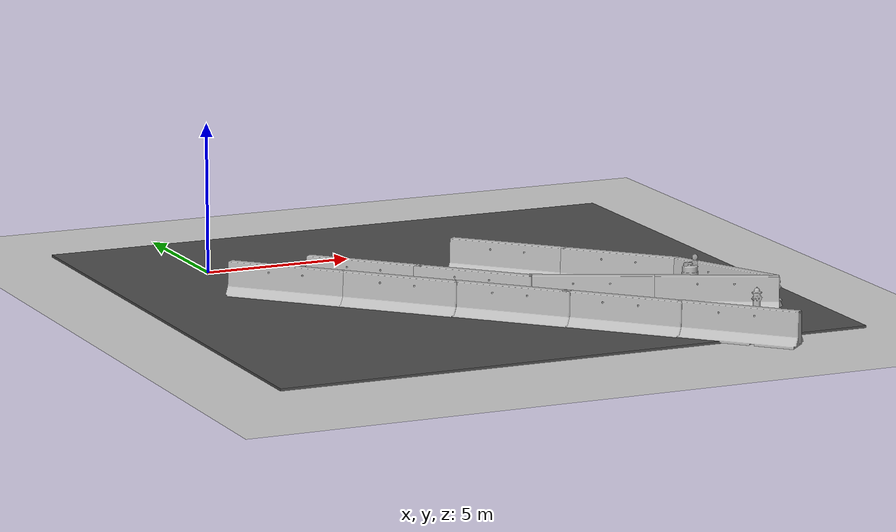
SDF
<sdf version="1.7">
 <world name="default">
  <model name="ground_plane">
   <static>1</static>
   <link name="link">
    <collision name="collision">
     <geometry><plane><normal>0 0 1</normal><size>100 100</size></plane></geometry>
     <surface><friction><ode><mu>100</mu><mu2>50</mu2></ode></friction></surface>
    </collision>
    <visual name="visual">
     <cast_shadows>0</cast_shadows>
     <geometry><plane><normal>0 0 1</normal><size>100 100</size></plane></geometry>
     <material>
      <script><uri>file://media/materials/scripts/gazebo.material</uri><name>Gazebo/Grey</name></script>
     </material>
    </visual>
   </link>
  </model>
  <model name="asphalt_plane">
   <static>1</static>
   <link name="link">
    <collision name="collision"><geometry><box><size>20 20 0.1</size></box></geometry></collision>
    <visual name="visual">
     <cast_shadows>0</cast_shadows>
     <geometry><box><size>20 20 0.1</size></box></geometry>
     <material>
      <script>
       <uri>model://asphalt_plane/materials/scripts</uri>
       <uri>model://asphalt_plane/materials/textures</uri>
       <name>vrc/asphalt</name>
      </script>
     </material>
    </visual>
   </link>
   <pose>6.15691 -5.58984 0 0 -0 0</pose>
  </model>
  <model name="jersey_barrier_clone_0">
   <static>1</static>
   <link name="link">
    <visual name="visual">
     <geometry><mesh><uri>model://jersey_barrier/meshes/jersey_barrier.dae</uri></mesh></geometry>
    </visual>
    <collision name="upright">
     <pose>0 0 0.5715 0 -0 0</pose>
     <geometry><box><size>4.06542 0.3063 1.143</size></box></geometry>
    </collision>
    <collision name="base">
     <pose>0 0 0.032258 0 -0 0</pose>
     <geometry><box><size>4.06542 0.8107 0.064516</size></box></geometry>
    </collision>
    <collision name="base2">
     <pose>0 0 0.1 0 -0 0</pose>
     <geometry><box><size>4.06542 0.65 0.1</size></box></geometry>
    </collision>
    <collision name="base3">
     <pose>0 0 0.2 0 -0 0</pose>
     <geometry><box><size>4.06542 0.5 0.1</size></box></geometry>
    </collision>
    <collision name="left-angle">
     <pose>0 -0.224 0.2401 0.9 -0 0</pose>
     <geometry><box><size>4.06542 0.5 0.064516</size></box></geometry>
    </collision>
    <collision name="right-angle">
     <pose>0 0.224 0.2401 -0.9 0 0</pose>
     <geometry><box><size>4.06542 0.5 0.064516</size></box></geometry>
    </collision>
   </link>
   <pose>0.873662 -4.75446 0 0 0 -0.801658</pose>
  </model>
  <model name="jersey_barrier_clone_1">
   <static>1</static>
   <link name="link">
    <visual name="visual">
     <geometry><mesh><uri>model://jersey_barrier/meshes/jersey_barrier.dae</uri></mesh></geometry>
    </visual>
    <collision name="upright">
     <pose>0 0 0.5715 0 -0 0</pose>
     <geometry><box><size>4.06542 0.3063 1.143</size></box></geometry>
    </collision>
    <collision name="base">
     <pose>0 0 0.032258 0 -0 0</pose>
     <geometry><box><size>4.06542 0.8107 0.064516</size></box></geometry>
    </collision>
    <collision name="base2">
     <pose>0 0 0.1 0 -0 0</pose>
     <geometry><box><size>4.06542 0.65 0.1</size></box></geometry>
    </collision>
    <collision name="base3">
     <pose>0 0 0.2 0 -0 0</pose>
     <geometry><box><size>4.06542 0.5 0.1</size></box></geometry>
    </collision>
    <collision name="left-angle">
     <pose>0 -0.224 0.2401 0.9 -0 0</pose>
     <geometry><box><size>4.06542 0.5 0.064516</size></box></geometry>
    </collision>
    <collision name="right-angle">
     <pose>0 0.224 0.2401 -0.9 0 0</pose>
     <geometry><box><size>4.06542 0.5 0.064516</size></box></geometry>
    </collision>
   </link>
   <pose>3.5774 -7.53993 0 0 0 -0.801658</pose>
  </model>
  <model name="jersey_barrier_clone_2">
   <static>1</static>
   <link name="link">
    <visual name="visual">
     <geometry><mesh><uri>model://jersey_barrier/meshes/jersey_barrier.dae</uri></mesh></geometry>
    </visual>
    <collision name="upright">
     <pose>0 0 0.5715 0 -0 0</pose>
     <geometry><box><size>4.06542 0.3063 1.143</size></box></geometry>
    </collision>
    <collision name="base">
     <pose>0 0 0.032258 0 -0 0</pose>
     <geometry><box><size>4.06542 0.8107 0.064516</size></box></geometry>
    </collision>
    <collision name="base2">
     <pose>0 0 0.1 0 -0 0</pose>
     <geometry><box><size>4.06542 0.65 0.1</size></box></geometry>
    </collision>
    <collision name="base3">
     <pose>0 0 0.2 0 -0 0</pose>
     <geometry><box><size>4.06542 0.5 0.1</size></box></geometry>
    </collision>
    <collision name="left-angle">
     <pose>0 -0.224 0.2401 0.9 -0 0</pose>
     <geometry><box><size>4.06542 0.5 0.064516</size></box></geometry>
    </collision>
    <collision name="right-angle">
     <pose>0 0.224 0.2401 -0.9 0 0</pose>
     <geometry><box><size>4.06542 0.5 0.064516</size></box></geometry>
    </collision>
   </link>
   <pose>6.27443 -10.2689 0 0 0 -0.801658</pose>
  </model>
  <model name="jersey_barrier_clone_3">
   <static>1</static>
   <link name="link">
    <visual name="visual">
     <geometry><mesh><uri>model://jersey_barrier/meshes/jersey_barrier.dae</uri></mesh></geometry>
    </visual>
    <collision name="upright">
     <pose>0 0 0.5715 0 -0 0</pose>
     <geometry><box><size>4.06542 0.3063 1.143</size></box></geometry>
    </collision>
    <collision name="base">
     <pose>0 0 0.032258 0 -0 0</pose>
     <geometry><box><size>4.06542 0.8107 0.064516</size></box></geometry>
    </collision>
    <collision name="base2">
     <pose>0 0 0.1 0 -0 0</pose>
     <geometry><box><size>4.06542 0.65 0.1</size></box></geometry>
    </collision>
    <collision name="base3">
     <pose>0 0 0.2 0 -0 0</pose>
     <geometry><box><size>4.06542 0.5 0.1</size></box></geometry>
    </collision>
    <collision name="left-angle">
     <pose>0 -0.224 0.2401 0.9 -0 0</pose>
     <geometry><box><size>4.06542 0.5 0.064516</size></box></geometry>
    </collision>
    <collision name="right-angle">
     <pose>0 0.224 0.2401 -0.9 0 0</pose>
     <geometry><box><size>4.06542 0.5 0.064516</size></box></geometry>
    </collision>
   </link>
   <pose>8.88419 -12.9197 0 0 0 -0.801658</pose>
  </model>
  <model name="jersey_barrier_clone_4">
   <static>1</static>
   <link name="link">
    <visual name="visual">
     <geometry><mesh><uri>model://jersey_barrier/meshes/jersey_barrier.dae</uri></mesh></geometry>
    </visual>
    <collision name="upright">
     <pose>0 0 0.5715 0 -0 0</pose>
     <geometry><box><size>4.06542 0.3063 1.143</size></box></geometry>
    </collision>
    <collision name="base">
     <pose>0 0 0.032258 0 -0 0</pose>
     <geometry><box><size>4.06542 0.8107 0.064516</size></box></geometry>
    </collision>
    <collision name="base2">
     <pose>0 0 0.1 0 -0 0</pose>
     <geometry><box><size>4.06542 0.65 0.1</size></box></geometry>
    </collision>
    <collision name="base3">
     <pose>0 0 0.2 0 -0 0</pose>
     <geometry><box><size>4.06542 0.5 0.1</size></box></geometry>
    </collision>
    <collision name="left-angle">
     <pose>0 -0.224 0.2401 0.9 -0 0</pose>
     <geometry><box><size>4.06542 0.5 0.064516</size></box></geometry>
    </collision>
    <collision name="right-angle">
     <pose>0 0.224 0.2401 -0.9 0 0</pose>
     <geometry><box><size>4.06542 0.5 0.064516</size></box></geometry>
    </collision>
   </link>
   <pose>11.5844 -15.6475 0 0 0 -0.801658</pose>
  </model>
  <model name="jersey_barrier_clone_5">
   <static>1</static>
   <link name="link">
    <visual name="visual">
     <geometry><mesh><uri>model://jersey_barrier/meshes/jersey_barrier.dae</uri></mesh></geometry>
    </visual>
    <collision name="upright">
     <pose>0 0 0.5715 0 -0 0</pose>
     <geometry><box><size>4.06542 0.3063 1.143</size></box></geometry>
    </collision>
    <collision name="base">
     <pose>0 0 0.032258 0 -0 0</pose>
     <geometry><box><size>4.06542 0.8107 0.064516</size></box></geometry>
    </collision>
    <collision name="base2">
     <pose>0 0 0.1 0 -0 0</pose>
     <geometry><box><size>4.06542 0.65 0.1</size></box></geometry>
    </collision>
    <collision name="base3">
     <pose>0 0 0.2 0 -0 0</pose>
     <geometry><box><size>4.06542 0.5 0.1</size></box></geometry>
    </collision>
    <collision name="left-angle">
     <pose>0 -0.224 0.2401 0.9 -0 0</pose>
     <geometry><box><size>4.06542 0.5 0.064516</size></box></geometry>
    </collision>
    <collision name="right-angle">
     <pose>0 0.224 0.2401 -0.9 0 0</pose>
     <geometry><box><size>4.06542 0.5 0.064516</size></box></geometry>
    </collision>
   </link>
   <pose>3.48641 -5.04299 0 0 0 -0.801658</pose>
  </model>
  <model name="jersey_barrier_clone_5_clone">
   <static>1</static>
   <link name="link">
    <visual name="visual">
     <geometry><mesh><uri>model://jersey_barrier/meshes/jersey_barrier.dae</uri></mesh></geometry>
    </visual>
    <collision name="upright">
     <pose>0 0 0.5715 0 -0 0</pose>
     <geometry><box><size>4.06542 0.3063 1.143</size></box></geometry>
    </collision>
    <collision name="base">
     <pose>0 0 0.032258 0 -0 0</pose>
     <geometry><box><size>4.06542 0.8107 0.064516</size></box></geometry>
    </collision>
    <collision name="base2">
     <pose>0 0 0.1 0 -0 0</pose>
     <geometry><box><size>4.06542 0.65 0.1</size></box></geometry>
    </collision>
    <collision name="base3">
     <pose>0 0 0.2 0 -0 0</pose>
     <geometry><box><size>4.06542 0.5 0.1</size></box></geometry>
    </collision>
    <collision name="left-angle">
     <pose>0 -0.224 0.2401 0.9 -0 0</pose>
     <geometry><box><size>4.06542 0.5 0.064516</size></box></geometry>
    </collision>
    <collision name="right-angle">
     <pose>0 0.224 0.2401 -0.9 0 0</pose>
     <geometry><box><size>4.06542 0.5 0.064516</size></box></geometry>
    </collision>
   </link>
   <pose>6.08884 -7.76781 0 0 0 -0.801658</pose>
  </model>
  <model name="jersey_barrier_clone_5_clone_clone">
   <static>1</static>
   <link name="link">
    <visual name="visual">
     <geometry><mesh><uri>model://jersey_barrier/meshes/jersey_barrier.dae</uri></mesh></geometry>
    </visual>
    <collision name="upright">
     <pose>0 0 0.5715 0 -0 0</pose>
     <geometry><box><size>4.06542 0.3063 1.143</size></box></geometry>
    </collision>
    <collision name="base">
     <pose>0 0 0.032258 0 -0 0</pose>
     <geometry><box><size>4.06542 0.8107 0.064516</size></box></geometry>
    </collision>
    <collision name="base2">
     <pose>0 0 0.1 0 -0 0</pose>
     <geometry><box><size>4.06542 0.65 0.1</size></box></geometry>
    </collision>
    <collision name="base3">
     <pose>0 0 0.2 0 -0 0</pose>
     <geometry><box><size>4.06542 0.5 0.1</size></box></geometry>
    </collision>
    <collision name="left-angle">
     <pose>0 -0.224 0.2401 0.9 -0 0</pose>
     <geometry><box><size>4.06542 0.5 0.064516</size></box></geometry>
    </collision>
    <collision name="right-angle">
     <pose>0 0.224 0.2401 -0.9 0 0</pose>
     <geometry><box><size>4.06542 0.5 0.064516</size></box></geometry>
    </collision>
   </link>
   <pose>9.24063 -9.94722 0 0 0 -0.439178</pose>
  </model>
  <model name="jersey_barrier_clone_5_clone_clone_clone">
   <static>1</static>
   <link name="link">
    <visual name="visual">
     <geometry><mesh><uri>model://jersey_barrier/meshes/jersey_barrier.dae</uri></mesh></geometry>
    </visual>
    <collision name="upright">
     <pose>0 0 0.5715 0 -0 0</pose>
     <geometry><box><size>4.06542 0.3063 1.143</size></box></geometry>
    </collision>
    <collision name="base">
     <pose>0 0 0.032258 0 -0 0</pose>
     <geometry><box><size>4.06542 0.8107 0.064516</size></box></geometry>
    </collision>
    <collision name="base2">
     <pose>0 0 0.1 0 -0 0</pose>
     <geometry><box><size>4.06542 0.65 0.1</size></box></geometry>
    </collision>
    <collision name="base3">
     <pose>0 0 0.2 0 -0 0</pose>
     <geometry><box><size>4.06542 0.5 0.1</size></box></geometry>
    </collision>
    <collision name="left-angle">
     <pose>0 -0.224 0.2401 0.9 -0 0</pose>
     <geometry><box><size>4.06542 0.5 0.064516</size></box></geometry>
    </collision>
    <collision name="right-angle">
     <pose>0 0.224 0.2401 -0.9 0 0</pose>
     <geometry><box><size>4.06542 0.5 0.064516</size></box></geometry>
    </collision>
   </link>
   <pose>12.8333 -11.6294 0 0 0 -0.439178</pose>
  </model>
  <model name="jersey_barrier_clone_5_clone_clone_clone_clone">
   <static>1</static>
   <link name="link">
    <visual name="visual">
     <geometry><mesh><uri>model://jersey_barrier/meshes/jersey_barrier.dae</uri></mesh></geometry>
    </visual>
    <collision name="upright">
     <pose>0 0 0.5715 0 -0 0</pose>
     <geometry><box><size>4.06542 0.3063 1.143</size></box></geometry>
    </collision>
    <collision name="base">
     <pose>0 0 0.032258 0 -0 0</pose>
     <geometry><box><size>4.06542 0.8107 0.064516</size></box></geometry>
    </collision>
    <collision name="base2">
     <pose>0 0 0.1 0 -0 0</pose>
     <geometry><box><size>4.06542 0.65 0.1</size></box></geometry>
    </collision>
    <collision name="base3">
     <pose>0 0 0.2 0 -0 0</pose>
     <geometry><box><size>4.06542 0.5 0.1</size></box></geometry>
    </collision>
    <collision name="left-angle">
     <pose>0 -0.224 0.2401 0.9 -0 0</pose>
     <geometry><box><size>4.06542 0.5 0.064516</size></box></geometry>
    </collision>
    <collision name="right-angle">
     <pose>0 0.224 0.2401 -0.9 0 0</pose>
     <geometry><box><size>4.06542 0.5 0.064516</size></box></geometry>
    </collision>
   </link>
   <pose>13.7174 -10.6036 0 0 0 -1.12639</pose>
  </model>
  <model name="jersey_barrier_clone_5_clone_clone_0">
   <static>1</static>
   <link name="link">
    <visual name="visual">
     <geometry><mesh><uri>model://jersey_barrier/meshes/jersey_barrier.dae</uri></mesh></geometry>
    </visual>
    <collision name="upright">
     <pose>0 0 0.5715 0 -0 0</pose>
     <geometry><box><size>4.06542 0.3063 1.143</size></box></geometry>
    </collision>
    <collision name="base">
     <pose>0 0 0.032258 0 -0 0</pose>
     <geometry><box><size>4.06542 0.8107 0.064516</size></box></geometry>
    </collision>
    <collision name="base2">
     <pose>0 0 0.1 0 -0 0</pose>
     <geometry><box><size>4.06542 0.65 0.1</size></box></geometry>
    </collision>
    <collision name="base3">
     <pose>0 0 0.2 0 -0 0</pose>
     <geometry><box><size>4.06542 0.5 0.1</size></box></geometry>
    </collision>
    <collision name="left-angle">
     <pose>0 -0.224 0.2401 0.9 -0 0</pose>
     <geometry><box><size>4.06542 0.5 0.064516</size></box></geometry>
    </collision>
    <collision name="right-angle">
     <pose>0 0.224 0.2401 -0.9 0 0</pose>
     <geometry><box><size>4.06542 0.5 0.064516</size></box></geometry>
    </collision>
   </link>
   <pose>11.4997 -7.37985 0 0 0 -0.801658</pose>
  </model>
  <model name="jersey_barrier_clone_5_clone_clone_1">
   <static>1</static>
   <link name="link">
    <visual name="visual">
     <geometry><mesh><uri>model://jersey_barrier/meshes/jersey_barrier.dae</uri></mesh></geometry>
    </visual>
    <collision name="upright">
     <pose>0 0 0.5715 0 -0 0</pose>
     <geometry><box><size>4.06542 0.3063 1.143</size></box></geometry>
    </collision>
    <collision name="base">
     <pose>0 0 0.032258 0 -0 0</pose>
     <geometry><box><size>4.06542 0.8107 0.064516</size></box></geometry>
    </collision>
    <collision name="base2">
     <pose>0 0 0.1 0 -0 0</pose>
     <geometry><box><size>4.06542 0.65 0.1</size></box></geometry>
    </collision>
    <collision name="base3">
     <pose>0 0 0.2 0 -0 0</pose>
     <geometry><box><size>4.06542 0.5 0.1</size></box></geometry>
    </collision>
    <collision name="left-angle">
     <pose>0 -0.224 0.2401 0.9 -0 0</pose>
     <geometry><box><size>4.06542 0.5 0.064516</size></box></geometry>
    </collision>
    <collision name="right-angle">
     <pose>0 0.224 0.2401 -0.9 0 0</pose>
     <geometry><box><size>4.06542 0.5 0.064516</size></box></geometry>
    </collision>
   </link>
   <pose>8.80553 -4.5792 0 0 0 -0.801658</pose>
  </model>
  <model name="Construction Barrel">
   <link name="link">
    <inertial>
     <pose>0 0 0.4 0 -0 0</pose>
     <mass>500</mass>
     <inertia><ixx>51.2096</ixx><iyy>51.2096</iyy><izz>25</izz><ixy>0</ixy><ixz>0</ixz><iyz>0</iyz></inertia>
    </inertial>
    <collision name="collision">
     <geometry><mesh><uri>model://construction_barrel/meshes/construction_barrel.dae</uri></mesh></geometry>
    </collision>
    <visual name="visual">
     <geometry><mesh><uri>model://construction_barrel/meshes/construction_barrel.dae</uri></mesh></geometry>
    </visual>
   </link>
   <pose>12.5263 -10.4013 0.049999 4e-06 -0 0.02546</pose>
  </model>
  <model name="fire_hydrant_0">
   <static>1</static>
   <link name="link">
    <collision name="collision">
     <geometry><mesh><uri>model://fire_hydrant/meshes/fire_hydrant.dae</uri></mesh></geometry>
    </collision>
    <visual name="visual">
     <geometry><mesh><uri>model://fire_hydrant/meshes/fire_hydrant.dae</uri></mesh></geometry>
    </visual>
   </link>
   <pose>13.7254 -12.7642 0 0 -0 0</pose>
  </model>
  <model name="fire_hydrant_1">
   <static>1</static>
   <link name="link">
    <collision name="collision">
     <geometry><mesh><uri>model://fire_hydrant/meshes/fire_hydrant.dae</uri></mesh></geometry>
    </collision>
    <visual name="visual">
     <geometry><mesh><uri>model://fire_hydrant/meshes/fire_hydrant.dae</uri></mesh></geometry>
    </visual>
   </link>
   <pose>14.9954 -11.6288 0 0 -0 0</pose>
  </model>
 </world>
</sdf>
